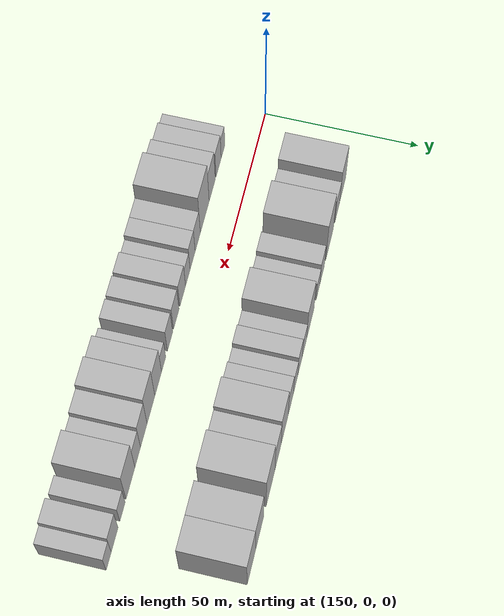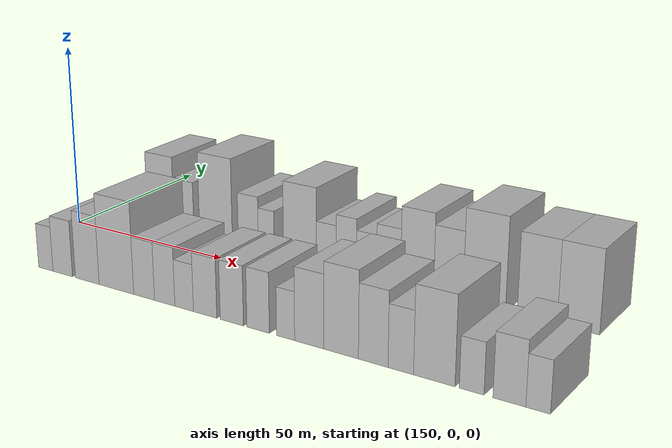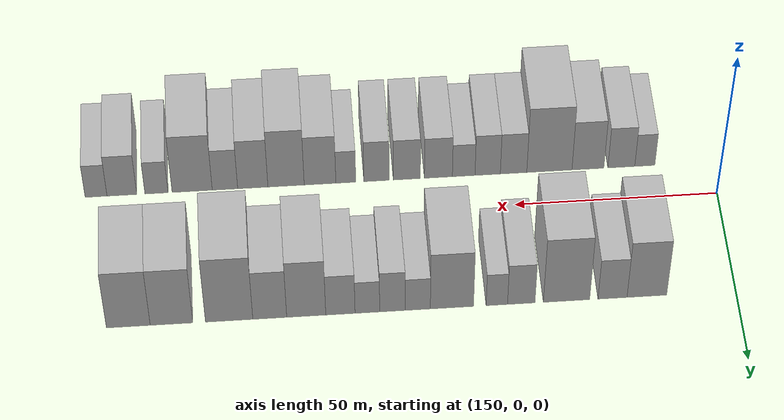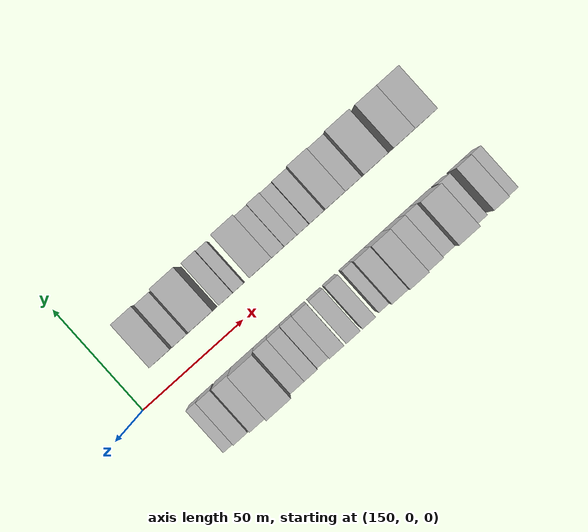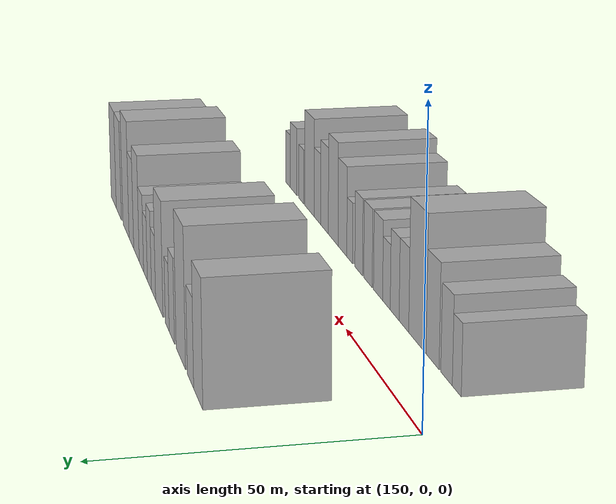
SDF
<sdf version="1.6">
 <world name="default">
  <model name="building_17">
   <static>1</static>
   <pose>171.3754 20.0000 0 0.000000 0.000000 1.570796</pose>
   <link name="link">
    <pose>0 0 10.50 0 0 0</pose>
    <collision name="collision"><geometry><box><size>20.0000 9.5335 21.0000</size></box></geometry></collision>
    <visual name="visual">
     <cast_shadows>0</cast_shadows>
     <geometry><box><size>20.0000 9.5335 21.0000</size></box></geometry>
     <material>
      <script>
       <uri>model://HANNAS_wall/materials/scripts</uri>
       <uri>model://HANNAS_wall/materials/textures</uri>
       <name>vrc/HANNAS_wall</name>
      </script>
     </material>
    </visual>
   </link>
  </model>
  <model name="building_18">
   <static>1</static>
   <pose>179.6254 20.0000 0 0.000000 0.000000 1.570796</pose>
   <link name="link">
    <pose>0 0 7.50 0 0 0</pose>
    <collision name="collision"><geometry><box><size>20.0000 6.9665 15.0000</size></box></geometry></collision>
    <visual name="visual">
     <cast_shadows>0</cast_shadows>
     <geometry><box><size>20.0000 6.9665 15.0000</size></box></geometry>
     <material>
      <script>
       <uri>model://HANNAS_wall/materials/scripts</uri>
       <uri>model://HANNAS_wall/materials/textures</uri>
       <name>vrc/HANNAS_wall</name>
      </script>
     </material>
    </visual>
   </link>
  </model>
  <model name="building_19">
   <static>1</static>
   <pose>190.6612 20.0000 0 0.000000 0.000000 1.570796</pose>
   <link name="link">
    <pose>0 0 12.00 0 0 0</pose>
    <collision name="collision"><geometry><box><size>20.0000 11.1052 24.0000</size></box></geometry></collision>
    <visual name="visual">
     <cast_shadows>0</cast_shadows>
     <geometry><box><size>20.0000 11.1052 24.0000</size></box></geometry>
     <material>
      <script>
       <uri>model://HANNAS_wall/materials/scripts</uri>
       <uri>model://HANNAS_wall/materials/textures</uri>
       <name>vrc/HANNAS_wall</name>
      </script>
     </material>
    </visual>
   </link>
  </model>
  <model name="building_20">
   <static>1</static>
   <pose>201.5022 20.0000 0 0.000000 0.000000 1.570796</pose>
   <link name="link">
    <pose>0 0 7.50 0 0 0</pose>
    <collision name="collision"><geometry><box><size>20.0000 6.5768 15.0000</size></box></geometry></collision>
    <visual name="visual">
     <cast_shadows>0</cast_shadows>
     <geometry><box><size>20.0000 6.5768 15.0000</size></box></geometry>
     <material>
      <script>
       <uri>model://HANNAS_wall/materials/scripts</uri>
       <uri>model://HANNAS_wall/materials/textures</uri>
       <name>vrc/HANNAS_wall</name>
      </script>
     </material>
    </visual>
   </link>
  </model>
  <model name="building_21">
   <static>1</static>
   <pose>207.3468 20.0000 0 0.000000 0.000000 1.570796</pose>
   <link name="link">
    <pose>0 0 6.00 0 0 0</pose>
    <collision name="collision"><geometry><box><size>20.0000 5.1124 12.0000</size></box></geometry></collision>
    <visual name="visual">
     <cast_shadows>0</cast_shadows>
     <geometry><box><size>20.0000 5.1124 12.0000</size></box></geometry>
     <material>
      <script>
       <uri>model://HANNAS_wall/materials/scripts</uri>
       <uri>model://HANNAS_wall/materials/textures</uri>
       <name>vrc/HANNAS_wall</name>
      </script>
     </material>
    </visual>
   </link>
  </model>
  <model name="building_22">
   <static>1</static>
   <pose>218.0613 20.0000 0 0.000000 0.000000 1.570796</pose>
   <link name="link">
    <pose>0 0 10.50 0 0 0</pose>
    <collision name="collision"><geometry><box><size>20.0000 10.3166 21.0000</size></box></geometry></collision>
    <visual name="visual">
     <cast_shadows>0</cast_shadows>
     <geometry><box><size>20.0000 10.3166 21.0000</size></box></geometry>
     <material>
      <script>
       <uri>model://HANNAS_wall/materials/scripts</uri>
       <uri>model://HANNAS_wall/materials/textures</uri>
       <name>vrc/HANNAS_wall</name>
      </script>
     </material>
    </visual>
   </link>
  </model>
  <model name="building_23">
   <static>1</static>
   <pose>226.2164 20.0000 0 0.000000 0.000000 1.570796</pose>
   <link name="link">
    <pose>0 0 6.00 0 0 0</pose>
    <collision name="collision"><geometry><box><size>20.0000 5.9935 12.0000</size></box></geometry></collision>
    <visual name="visual">
     <cast_shadows>0</cast_shadows>
     <geometry><box><size>20.0000 5.9935 12.0000</size></box></geometry>
     <material>
      <script>
       <uri>model://HANNAS_wall/materials/scripts</uri>
       <uri>model://HANNAS_wall/materials/textures</uri>
       <name>vrc/HANNAS_wall</name>
      </script>
     </material>
    </visual>
   </link>
  </model>
  <model name="building_24">
   <static>1</static>
   <pose>232.2508 20.0000 0 0.000000 0.000000 1.570796</pose>
   <link name="link">
    <pose>0 0 7.50 0 0 0</pose>
    <collision name="collision"><geometry><box><size>20.0000 6.0754 15.0000</size></box></geometry></collision>
    <visual name="visual">
     <cast_shadows>0</cast_shadows>
     <geometry><box><size>20.0000 6.0754 15.0000</size></box></geometry>
     <material>
      <script>
       <uri>model://HANNAS_wall/materials/scripts</uri>
       <uri>model://HANNAS_wall/materials/textures</uri>
       <name>vrc/HANNAS_wall</name>
      </script>
     </material>
    </visual>
   </link>
  </model>
  <model name="building_25">
   <static>1</static>
   <pose>238.2232 20.0000 0 0.000000 0.000000 1.570796</pose>
   <link name="link">
    <pose>0 0 6.00 0 0 0</pose>
    <collision name="collision"><geometry><box><size>20.0000 5.8694 12.0000</size></box></geometry></collision>
    <visual name="visual">
     <cast_shadows>0</cast_shadows>
     <geometry><box><size>20.0000 5.8694 12.0000</size></box></geometry>
     <material>
      <script>
       <uri>model://HANNAS_wall/materials/scripts</uri>
       <uri>model://HANNAS_wall/materials/textures</uri>
       <name>vrc/HANNAS_wall</name>
      </script>
     </material>
    </visual>
   </link>
  </model>
  <model name="building_26">
   <static>1</static>
   <pose>244.6414 20.0000 0 0.000000 0.000000 1.570796</pose>
   <link name="link">
    <pose>0 0 7.50 0 0 0</pose>
    <collision name="collision"><geometry><box><size>20.0000 6.9671 15.0000</size></box></geometry></collision>
    <visual name="visual">
     <cast_shadows>0</cast_shadows>
     <geometry><box><size>20.0000 6.9671 15.0000</size></box></geometry>
     <material>
      <script>
       <uri>model://HANNAS_wall/materials/scripts</uri>
       <uri>model://HANNAS_wall/materials/textures</uri>
       <name>vrc/HANNAS_wall</name>
      </script>
     </material>
    </visual>
   </link>
  </model>
  <model name="building_27">
   <static>1</static>
   <pose>252.7623 20.0000 0 0.000000 0.000000 1.570796</pose>
   <link name="link">
    <pose>0 0 10.50 0 0 0</pose>
    <collision name="collision"><geometry><box><size>20.0000 9.2746 21.0000</size></box></geometry></collision>
    <visual name="visual">
     <cast_shadows>0</cast_shadows>
     <geometry><box><size>20.0000 9.2746 21.0000</size></box></geometry>
     <material>
      <script>
       <uri>model://HANNAS_wall/materials/scripts</uri>
       <uri>model://HANNAS_wall/materials/textures</uri>
       <name>vrc/HANNAS_wall</name>
      </script>
     </material>
    </visual>
   </link>
  </model>
  <model name="building_28">
   <static>1</static>
   <pose>261.4188 20.0000 0 0.000000 0.000000 1.570796</pose>
   <link name="link">
    <pose>0 0 9.00 0 0 0</pose>
    <collision name="collision"><geometry><box><size>20.0000 8.0386 18.0000</size></box></geometry></collision>
    <visual name="visual">
     <cast_shadows>0</cast_shadows>
     <geometry><box><size>20.0000 8.0386 18.0000</size></box></geometry>
     <material>
      <script>
       <uri>model://HANNAS_wall/materials/scripts</uri>
       <uri>model://HANNAS_wall/materials/textures</uri>
       <name>vrc/HANNAS_wall</name>
      </script>
     </material>
    </visual>
   </link>
  </model>
  <model name="building_29">
   <static>1</static>
   <pose>271.0423 20.0000 0 0.000000 0.000000 1.570796</pose>
   <link name="link">
    <pose>0 0 12.00 0 0 0</pose>
    <collision name="collision"><geometry><box><size>20.0000 11.2085 24.0000</size></box></geometry></collision>
    <visual name="visual">
     <cast_shadows>0</cast_shadows>
     <geometry><box><size>20.0000 11.2085 24.0000</size></box></geometry>
     <material>
      <script>
       <uri>model://HANNAS_wall/materials/scripts</uri>
       <uri>model://HANNAS_wall/materials/textures</uri>
       <name>vrc/HANNAS_wall</name>
      </script>
     </material>
    </visual>
   </link>
  </model>
  <model name="building_30">
   <static>1</static>
   <pose>284.6836 20.0000 0 0.000000 0.000000 1.570796</pose>
   <link name="link">
    <pose>0 0 10.50 0 0 0</pose>
    <collision name="collision"><geometry><box><size>20.0000 10.0740 21.0000</size></box></geometry></collision>
    <visual name="visual">
     <cast_shadows>0</cast_shadows>
     <geometry><box><size>20.0000 10.0740 21.0000</size></box></geometry>
     <material>
      <script>
       <uri>model://HANNAS_wall/materials/scripts</uri>
       <uri>model://HANNAS_wall/materials/textures</uri>
       <name>vrc/HANNAS_wall</name>
      </script>
     </material>
    </visual>
   </link>
  </model>
  <model name="building_31">
   <static>1</static>
   <pose>294.8877 20.0000 0 0.000000 0.000000 1.570796</pose>
   <link name="link">
    <pose>0 0 10.50 0 0 0</pose>
    <collision name="collision"><geometry><box><size>20.0000 10.3343 21.0000</size></box></geometry></collision>
    <visual name="visual">
     <cast_shadows>0</cast_shadows>
     <geometry><box><size>20.0000 10.3343 21.0000</size></box></geometry>
     <material>
      <script>
       <uri>model://HANNAS_wall/materials/scripts</uri>
       <uri>model://HANNAS_wall/materials/textures</uri>
       <name>vrc/HANNAS_wall</name>
      </script>
     </material>
    </visual>
   </link>
  </model>
  <model name="building_48">
   <static>1</static>
   <pose>166.6383 -20.0000 0 0.000000 0.000000 1.570796</pose>
   <link name="link">
    <pose>0 0 6.00 0 0 0</pose>
    <collision name="collision"><geometry><box><size>20.0000 5.0215 12.0000</size></box></geometry></collision>
    <visual name="visual">
     <cast_shadows>0</cast_shadows>
     <geometry><box><size>20.0000 5.0215 12.0000</size></box></geometry>
     <material>
      <script>
       <uri>model://HANNAS_wall/materials/scripts</uri>
       <uri>model://HANNAS_wall/materials/textures</uri>
       <name>vrc/HANNAS_wall</name>
      </script>
     </material>
    </visual>
   </link>
  </model>
  <model name="building_49">
   <static>1</static>
   <pose>172.5131 -20.0000 0 0.000000 0.000000 1.570796</pose>
   <link name="link">
    <pose>0 0 7.50 0 0 0</pose>
    <collision name="collision"><geometry><box><size>20.0000 6.7281 15.0000</size></box></geometry></collision>
    <visual name="visual">
     <cast_shadows>0</cast_shadows>
     <geometry><box><size>20.0000 6.7281 15.0000</size></box></geometry>
     <material>
      <script>
       <uri>model://HANNAS_wall/materials/scripts</uri>
       <uri>model://HANNAS_wall/materials/textures</uri>
       <name>vrc/HANNAS_wall</name>
      </script>
     </material>
    </visual>
   </link>
  </model>
  <model name="building_50">
   <static>1</static>
   <pose>180.8635 -20.0000 0 0.000000 0.000000 1.570796</pose>
   <link name="link">
    <pose>0 0 9.00 0 0 0</pose>
    <collision name="collision"><geometry><box><size>20.0000 7.9726 18.0000</size></box></geometry></collision>
    <visual name="visual">
     <cast_shadows>0</cast_shadows>
     <geometry><box><size>20.0000 7.9726 18.0000</size></box></geometry>
     <material>
      <script>
       <uri>model://HANNAS_wall/materials/scripts</uri>
       <uri>model://HANNAS_wall/materials/textures</uri>
       <name>vrc/HANNAS_wall</name>
      </script>
     </material>
    </visual>
   </link>
  </model>
  <model name="building_51">
   <static>1</static>
   <pose>190.4805 -20.0000 0 0.000000 0.000000 1.570796</pose>
   <link name="link">
    <pose>0 0 12.00 0 0 0</pose>
    <collision name="collision"><geometry><box><size>20.0000 11.2616 24.0000</size></box></geometry></collision>
    <visual name="visual">
     <cast_shadows>0</cast_shadows>
     <geometry><box><size>20.0000 11.2616 24.0000</size></box></geometry>
     <material>
      <script>
       <uri>model://HANNAS_wall/materials/scripts</uri>
       <uri>model://HANNAS_wall/materials/textures</uri>
       <name>vrc/HANNAS_wall</name>
      </script>
     </material>
    </visual>
   </link>
  </model>
  <model name="building_52">
   <static>1</static>
   <pose>199.4059 -20.0000 0 0.000000 0.000000 1.570796</pose>
   <link name="link">
    <pose>0 0 7.50 0 0 0</pose>
    <collision name="collision"><geometry><box><size>20.0000 6.5890 15.0000</size></box></geometry></collision>
    <visual name="visual">
     <cast_shadows>0</cast_shadows>
     <geometry><box><size>20.0000 6.5890 15.0000</size></box></geometry>
     <material>
      <script>
       <uri>model://HANNAS_wall/materials/scripts</uri>
       <uri>model://HANNAS_wall/materials/textures</uri>
       <name>vrc/HANNAS_wall</name>
      </script>
     </material>
    </visual>
   </link>
  </model>
  <model name="building_53">
   <static>1</static>
   <pose>205.8485 -20.0000 0 0.000000 0.000000 1.570796</pose>
   <link name="link">
    <pose>0 0 7.50 0 0 0</pose>
    <collision name="collision"><geometry><box><size>20.0000 6.2962 15.0000</size></box></geometry></collision>
    <visual name="visual">
     <cast_shadows>0</cast_shadows>
     <geometry><box><size>20.0000 6.2962 15.0000</size></box></geometry>
     <material>
      <script>
       <uri>model://HANNAS_wall/materials/scripts</uri>
       <uri>model://HANNAS_wall/materials/textures</uri>
       <name>vrc/HANNAS_wall</name>
      </script>
     </material>
    </visual>
   </link>
  </model>
  <model name="building_54">
   <static>1</static>
   <pose>211.8099 -20.0000 0 0.000000 0.000000 1.570796</pose>
   <link name="link">
    <pose>0 0 6.00 0 0 0</pose>
    <collision name="collision"><geometry><box><size>20.0000 5.6266 12.0000</size></box></geometry></collision>
    <visual name="visual">
     <cast_shadows>0</cast_shadows>
     <geometry><box><size>20.0000 5.6266 12.0000</size></box></geometry>
     <material>
      <script>
       <uri>model://HANNAS_wall/materials/scripts</uri>
       <uri>model://HANNAS_wall/materials/textures</uri>
       <name>vrc/HANNAS_wall</name>
      </script>
     </material>
    </visual>
   </link>
  </model>
  <model name="building_55">
   <static>1</static>
   <pose>218.0965 -20.0000 0 0.000000 0.000000 1.570796</pose>
   <link name="link">
    <pose>0 0 7.50 0 0 0</pose>
    <collision name="collision"><geometry><box><size>20.0000 6.9466 15.0000</size></box></geometry></collision>
    <visual name="visual">
     <cast_shadows>0</cast_shadows>
     <geometry><box><size>20.0000 6.9466 15.0000</size></box></geometry>
     <material>
      <script>
       <uri>model://HANNAS_wall/materials/scripts</uri>
       <uri>model://HANNAS_wall/materials/textures</uri>
       <name>vrc/HANNAS_wall</name>
      </script>
     </material>
    </visual>
   </link>
  </model>
  <model name="building_56">
   <static>1</static>
   <pose>225.9277 -20.0000 0 0.000000 0.000000 1.570796</pose>
   <link name="link">
    <pose>0 0 7.50 0 0 0</pose>
    <collision name="collision"><geometry><box><size>20.0000 6.7158 15.0000</size></box></geometry></collision>
    <visual name="visual">
     <cast_shadows>0</cast_shadows>
     <geometry><box><size>20.0000 6.7158 15.0000</size></box></geometry>
     <material>
      <script>
       <uri>model://HANNAS_wall/materials/scripts</uri>
       <uri>model://HANNAS_wall/materials/textures</uri>
       <name>vrc/HANNAS_wall</name>
      </script>
     </material>
    </visual>
   </link>
  </model>
  <model name="building_57">
   <static>1</static>
   <pose>233.4308 -20.0000 0 0.000000 0.000000 1.570796</pose>
   <link name="link">
    <pose>0 0 7.50 0 0 0</pose>
    <collision name="collision"><geometry><box><size>20.0000 6.2904 15.0000</size></box></geometry></collision>
    <visual name="visual">
     <cast_shadows>0</cast_shadows>
     <geometry><box><size>20.0000 6.2904 15.0000</size></box></geometry>
     <material>
      <script>
       <uri>model://HANNAS_wall/materials/scripts</uri>
       <uri>model://HANNAS_wall/materials/textures</uri>
       <name>vrc/HANNAS_wall</name>
      </script>
     </material>
    </visual>
   </link>
  </model>
  <model name="building_58">
   <static>1</static>
   <pose>241.0456 -20.0000 0 0.000000 0.000000 1.570796</pose>
   <link name="link">
    <pose>0 0 6.00 0 0 0</pose>
    <collision name="collision"><geometry><box><size>20.0000 4.9393 12.0000</size></box></geometry></collision>
    <visual name="visual">
     <cast_shadows>0</cast_shadows>
     <geometry><box><size>20.0000 4.9393 12.0000</size></box></geometry>
     <material>
      <script>
       <uri>model://HANNAS_wall/materials/scripts</uri>
       <uri>model://HANNAS_wall/materials/textures</uri>
       <name>vrc/HANNAS_wall</name>
      </script>
     </material>
    </visual>
   </link>
  </model>
  <model name="building_59">
   <static>1</static>
   <pose>247.4343 -20.0000 0 0.000000 0.000000 1.570796</pose>
   <link name="link">
    <pose>0 0 9.00 0 0 0</pose>
    <collision name="collision"><geometry><box><size>20.0000 7.8380 18.0000</size></box></geometry></collision>
    <visual name="visual">
     <cast_shadows>0</cast_shadows>
     <geometry><box><size>20.0000 7.8380 18.0000</size></box></geometry>
     <material>
      <script>
       <uri>model://HANNAS_wall/materials/scripts</uri>
       <uri>model://HANNAS_wall/materials/textures</uri>
       <name>vrc/HANNAS_wall</name>
      </script>
     </material>
    </visual>
   </link>
  </model>
  <model name="building_60">
   <static>1</static>
   <pose>255.8329 -20.0000 0 0.000000 0.000000 1.570796</pose>
   <link name="link">
    <pose>0 0 10.50 0 0 0</pose>
    <collision name="collision"><geometry><box><size>20.0000 8.9593 21.0000</size></box></geometry></collision>
    <visual name="visual">
     <cast_shadows>0</cast_shadows>
     <geometry><box><size>20.0000 8.9593 21.0000</size></box></geometry>
     <material>
      <script>
       <uri>model://HANNAS_wall/materials/scripts</uri>
       <uri>model://HANNAS_wall/materials/textures</uri>
       <name>vrc/HANNAS_wall</name>
      </script>
     </material>
    </visual>
   </link>
  </model>
  <model name="building_61">
   <static>1</static>
   <pose>264.0437 -20.0000 0 0.000000 0.000000 1.570796</pose>
   <link name="link">
    <pose>0 0 9.00 0 0 0</pose>
    <collision name="collision"><geometry><box><size>20.0000 7.4623 18.0000</size></box></geometry></collision>
    <visual name="visual">
     <cast_shadows>0</cast_shadows>
     <geometry><box><size>20.0000 7.4623 18.0000</size></box></geometry>
     <material>
      <script>
       <uri>model://HANNAS_wall/materials/scripts</uri>
       <uri>model://HANNAS_wall/materials/textures</uri>
       <name>vrc/HANNAS_wall</name>
      </script>
     </material>
    </visual>
   </link>
  </model>
  <model name="building_62">
   <static>1</static>
   <pose>270.9086 -20.0000 0 0.000000 0.000000 1.570796</pose>
   <link name="link">
    <pose>0 0 7.50 0 0 0</pose>
    <collision name="collision"><geometry><box><size>20.0000 6.2675 15.0000</size></box></geometry></collision>
    <visual name="visual">
     <cast_shadows>0</cast_shadows>
     <geometry><box><size>20.0000 6.2675 15.0000</size></box></geometry>
     <material>
      <script>
       <uri>model://HANNAS_wall/materials/scripts</uri>
       <uri>model://HANNAS_wall/materials/textures</uri>
       <name>vrc/HANNAS_wall</name>
      </script>
     </material>
    </visual>
   </link>
  </model>
  <model name="building_63">
   <static>1</static>
   <pose>278.9805 -20.0000 0 0.000000 0.000000 1.570796</pose>
   <link name="link">
    <pose>0 0 10.50 0 0 0</pose>
    <collision name="collision"><geometry><box><size>20.0000 9.8765 21.0000</size></box></geometry></collision>
    <visual name="visual">
     <cast_shadows>0</cast_shadows>
     <geometry><box><size>20.0000 9.8765 21.0000</size></box></geometry>
     <material>
      <script>
       <uri>model://HANNAS_wall/materials/scripts</uri>
       <uri>model://HANNAS_wall/materials/textures</uri>
       <name>vrc/HANNAS_wall</name>
      </script>
     </material>
    </visual>
   </link>
  </model>
  <model name="building_64">
   <static>1</static>
   <pose>287.7634 -20.0000 0 0.000000 0.000000 1.570796</pose>
   <link name="link">
    <pose>0 0 6.00 0 0 0</pose>
    <collision name="collision"><geometry><box><size>20.0000 5.6892 12.0000</size></box></geometry></collision>
    <visual name="visual">
     <cast_shadows>0</cast_shadows>
     <geometry><box><size>20.0000 5.6892 12.0000</size></box></geometry>
     <material>
      <script>
       <uri>model://HANNAS_wall/materials/scripts</uri>
       <uri>model://HANNAS_wall/materials/textures</uri>
       <name>vrc/HANNAS_wall</name>
      </script>
     </material>
    </visual>
   </link>
  </model>
  <model name="building_65">
   <static>1</static>
   <pose>296.2673 -20.0000 0 0.000000 0.000000 1.570796</pose>
   <link name="link">
    <pose>0 0 7.50 0 0 0</pose>
    <collision name="collision"><geometry><box><size>20.0000 7.3187 15.0000</size></box></geometry></collision>
    <visual name="visual">
     <cast_shadows>0</cast_shadows>
     <geometry><box><size>20.0000 7.3187 15.0000</size></box></geometry>
     <material>
      <script>
       <uri>model://HANNAS_wall/materials/scripts</uri>
       <uri>model://HANNAS_wall/materials/textures</uri>
       <name>vrc/HANNAS_wall</name>
      </script>
     </material>
    </visual>
   </link>
  </model>
  <model name="building_66">
   <static>1</static>
   <pose>302.6109 -20.0000 0 0.000000 0.000000 1.570796</pose>
   <link name="link">
    <pose>0 0 6.00 0 0 0</pose>
    <collision name="collision"><geometry><box><size>20.0000 5.3684 12.0000</size></box></geometry></collision>
    <visual name="visual">
     <cast_shadows>0</cast_shadows>
     <geometry><box><size>20.0000 5.3684 12.0000</size></box></geometry>
     <material>
      <script>
       <uri>model://HANNAS_wall/materials/scripts</uri>
       <uri>model://HANNAS_wall/materials/textures</uri>
       <name>vrc/HANNAS_wall</name>
      </script>
     </material>
    </visual>
   </link>
  </model>
 </world>
</sdf>
